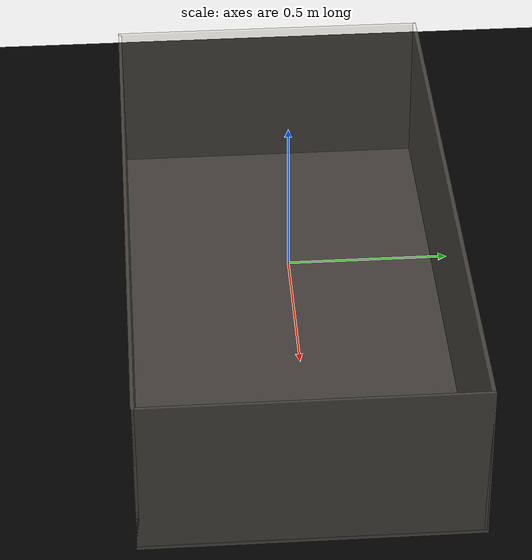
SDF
<?xml version="1.0" ?>
<sdf version="1.6">
  <world name="world">
    <model name="pool">
      <pose>0 0 0 0 0 0</pose>
      <link name="wall_xmin">
        <pose>-1.005 0.0 0.005 0 0 0</pose>
        <collision name="wall_xmin_collision">
          <pose>0 0 0 0 0 0</pose>
          <geometry>
            <box>
              <size>0.01 1.02 0.51</size>
            </box>
          </geometry>
        </collision>
        <visual name="wall_xmin_visual">
          <pose>0 0 0 0 0 0</pose>
          <geometry>
            <box>
              <size>0.01 1.02 0.51</size>
            </box>
          </geometry>
          <material>
            <ambient>0.78 0.74 0.68 0.3</ambient>
            <diffuse>0.88 0.84 0.78 0.3</diffuse>
            <specular>0.30 0.28 0.25 0.3</specular>
            <emissive>0.0  0.0  0.0  0.3</emissive>
          </material>
        </visual>
      </link>
      <link name="wall_xmax">
        <pose>1.005 0.0 0.005 0 0 0</pose>
        <collision name="wall_xmax_collision">
          <pose>0 0 0 0 0 0</pose>
          <geometry>
            <box>
              <size>0.01 1.02 0.51</size>
            </box>
          </geometry>
        </collision>
        <visual name="wall_xmax_visual">
          <pose>0 0 0 0 0 0</pose>
          <geometry>
            <box>
              <size>0.01 1.02 0.51</size>
            </box>
          </geometry>
          <material>
            <ambient>0.78 0.74 0.68 0.3</ambient>
            <diffuse>0.88 0.84 0.78 0.3</diffuse>
            <specular>0.30 0.28 0.25 0.3</specular>
            <emissive>0.0  0.0  0.0  0.3</emissive>
          </material>
        </visual>
      </link>
      <link name="wall_ymin">
        <pose>0.0 -0.505 0.005 0 0 0</pose>
        <collision name="wall_ymin_collision">
          <pose>0 0 0 0 0 0</pose>
          <geometry>
            <box>
              <size>2.02 0.01 0.51</size>
            </box>
          </geometry>
        </collision>
        <visual name="wall_ymin_visual">
          <pose>0 0 0 0 0 0</pose>
          <geometry>
            <box>
              <size>2.02 0.01 0.51</size>
            </box>
          </geometry>
          <material>
            <ambient>0.78 0.74 0.68 0.3</ambient>
            <diffuse>0.88 0.84 0.78 0.3</diffuse>
            <specular>0.30 0.28 0.25 0.3</specular>
            <emissive>0.0  0.0  0.0  0.3</emissive>
          </material>
        </visual>
      </link>
      <link name="wall_ymax">
        <pose>0.0 0.505 0.005 0 0 0</pose>
        <collision name="wall_ymax_collision">
          <pose>0 0 0 0 0 0</pose>
          <geometry>
            <box>
              <size>2.02 0.01 0.51</size>
            </box>
          </geometry>
        </collision>
        <visual name="wall_ymax_visual">
          <pose>0 0 0 0 0 0</pose>
          <geometry>
            <box>
              <size>2.02 0.01 0.51</size>
            </box>
          </geometry>
          <material>
            <ambient>0.78 0.74 0.68 0.3</ambient>
            <diffuse>0.88 0.84 0.78 0.3</diffuse>
            <specular>0.30 0.28 0.25 0.3</specular>
            <emissive>0.0  0.0  0.0  0.3</emissive>
          </material>
        </visual>
      </link>
      <link name="floor">
        <pose>0.0 0.0 -0.255 0 0 0</pose>
        <collision name="floor_collision">
          <pose>0 0 0 0 0 0</pose>
          <geometry>
            <box>
              <size>2.02 1.02 0.01</size>
            </box>
          </geometry>
        </collision>
        <visual name="floor_visual">
          <pose>0 0 0 0 0 0</pose>
          <geometry>
            <box>
              <size>2.02 1.02 0.01</size>
            </box>
          </geometry>
          <material>
            <ambient>0.78 0.74 0.68 0.3</ambient>
            <diffuse>0.88 0.84 0.78 0.3</diffuse>
            <specular>0.30 0.28 0.25 0.3</specular>
            <emissive>0.0  0.0  0.0  0.3</emissive>
          </material>
        </visual>
      </link>
      <link name="ground_bg">
        <pose>0.0 0.0 -0.275 0 0 0</pose>
        <visual name="ground_bg_visual">
          <pose>0 0 0 0 0 0</pose>
          <geometry>
            <box>
              <size>100 100 0.002</size>
            </box>
          </geometry>
          <material>
            <ambient>0.0 0.0 0.0 1.0</ambient>
            <diffuse>0.0 0.0 0.0 1.0</diffuse>
            <specular>0.0 0.0 0.0 1.0</specular>
            <emissive>0.0 0.0 0.0 1.0</emissive>
          </material>
        </visual>
      </link>
    </model>
  </world>
</sdf>
